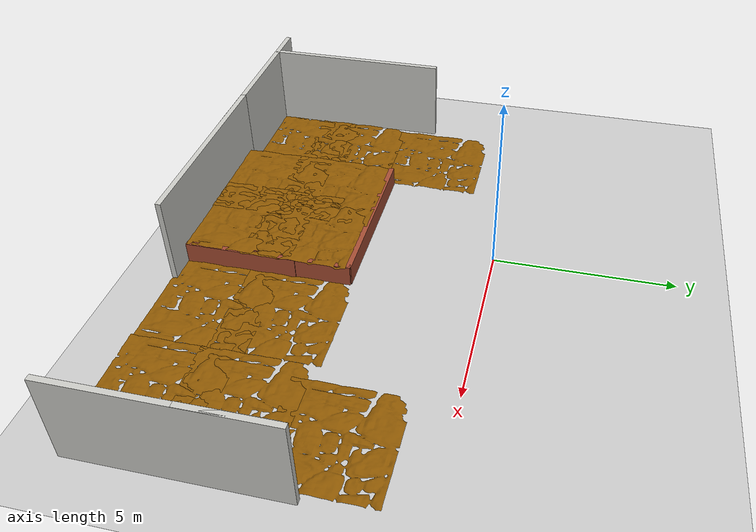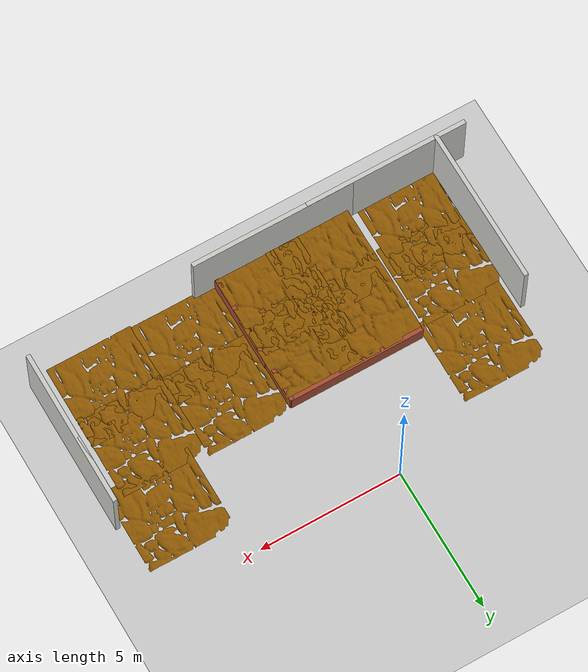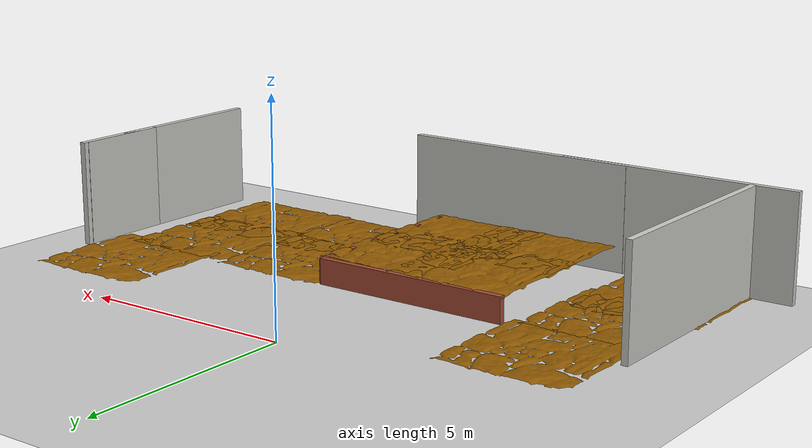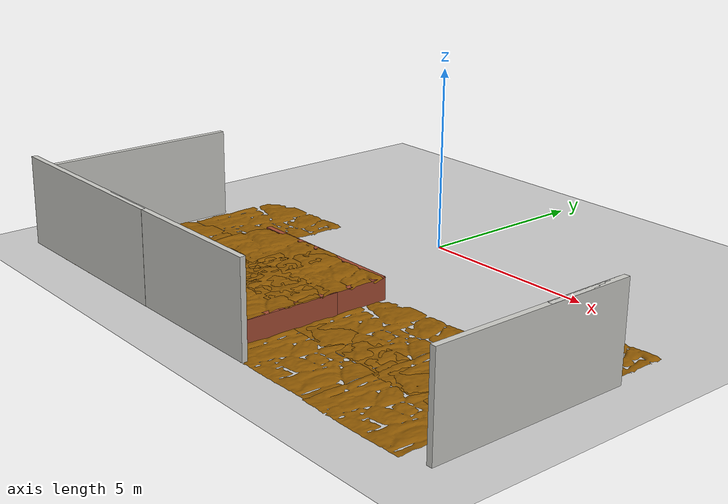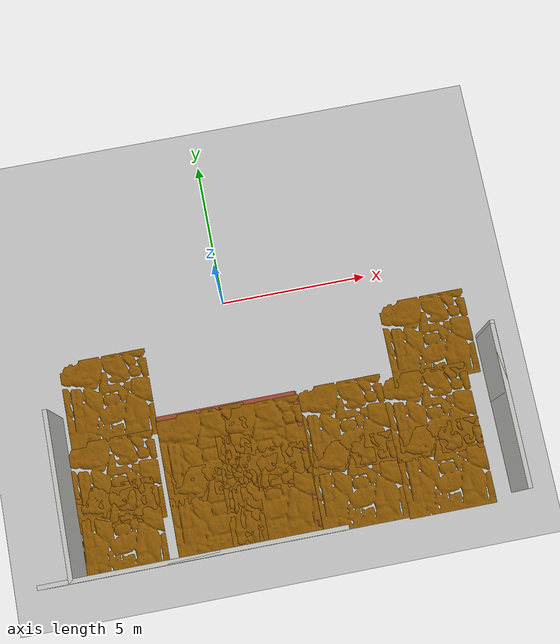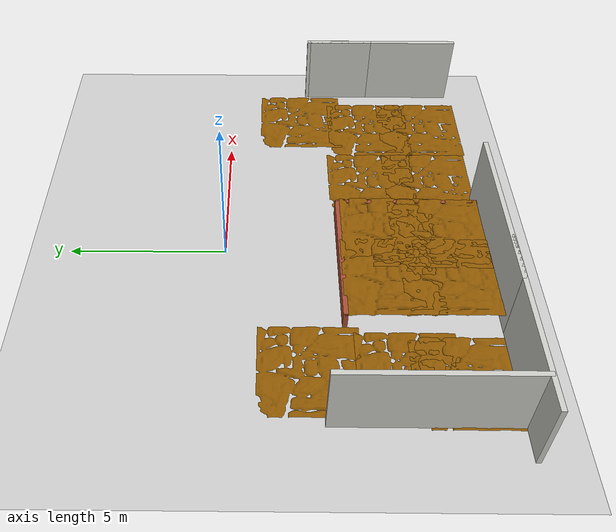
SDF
<sdf version="1.6">
 <world name="default">
  <model name="ground_plane">
   <static>1</static>
   <link name="link">
    <collision name="collision">
     <geometry><plane><normal>0 0 1</normal><size>100 100</size></plane></geometry>
     <surface>
      <contact><collide_bitmask>65535</collide_bitmask></contact>
      <friction><ode><mu>100</mu><mu2>50</mu2></ode></friction>
     </surface>
    </collision>
    <visual name="visual">
     <cast_shadows>0</cast_shadows>
     <geometry><plane><normal>0 0 1</normal><size>100 100</size></plane></geometry>
     <material>
      <script><uri>file://media/materials/scripts/gazebo.material</uri><name>Gazebo/Grey</name></script>
     </material>
    </visual>
   </link>
  </model>
  <model name="pared_1_1">
   <pose>-6.17787 -5.68421 0 0 -0 0</pose>
   <link name="Wall_21">
    <collision name="Wall_21_Collision">
     <geometry><box><size>5.5 0.15 2.5</size></box></geometry>
     <pose>0 0 1.25 0 -0 0</pose>
    </collision>
    <visual name="Wall_21_Visual">
     <pose>0 0 1.25 0 -0 0</pose>
     <geometry><box><size>5.5 0.15 2.5</size></box></geometry>
     <material>
      <script><uri>file://media/materials/scripts/gazebo.material</uri><name>Gazebo/CeilingTiled</name></script>
      <ambient>1 1 1 1</ambient>
     </material>
     <meta><layer>0</layer></meta>
    </visual>
    <pose>0 0 0 0 -0 -1.5708</pose>
   </link>
   <static>1</static>
  </model>
  <model name="pared4">
   <pose>8.44328 -4.0336 0 0 -0 0</pose>
   <link name="Wall_28">
    <collision name="Wall_28_Collision">
     <geometry><box><size>2.25 0.15 2.5</size></box></geometry>
     <pose>0 0 1.25 0 -0 0</pose>
    </collision>
    <visual name="Wall_28_Visual">
     <pose>0 0 1.25 0 -0 0</pose>
     <geometry><box><size>2.25 0.15 2.5</size></box></geometry>
     <material>
      <script><uri>file://media/materials/scripts/gazebo.material</uri><name>Gazebo/CeilingTiled</name></script>
      <ambient>1 1 1 1</ambient>
     </material>
     <meta><layer>0</layer></meta>
    </visual>
    <pose>-0 0 0 0 -0 -1.5708</pose>
   </link>
   <static>1</static>
  </model>
  <model name="pared_2_2">
   <pose>-0.261836 -8.38493 0 0 -0 0</pose>
   <link name="Wall_24">
    <collision name="Wall_24_Collision">
     <geometry><box><size>5.75 0.15 2.5</size></box></geometry>
     <pose>0 0 1.25 0 -0 0</pose>
    </collision>
    <visual name="Wall_24_Visual">
     <pose>0 0 1.25 0 -0 0</pose>
     <geometry><box><size>5.75 0.15 2.5</size></box></geometry>
     <material>
      <script><uri>file://media/materials/scripts/gazebo.material</uri><name>Gazebo/CeilingTiled</name></script>
      <ambient>1 1 1 1</ambient>
     </material>
     <meta><layer>0</layer></meta>
    </visual>
   </link>
   <static>1</static>
  </model>
  <model name="pared_1_4">
   <pose>8.44952 -5.53816 0 0 -0 0</pose>
   <link name="Wall_21">
    <collision name="Wall_21_Collision">
     <geometry><box><size>5.5 0.15 2.5</size></box></geometry>
     <pose>0 0 1.25 0 -0 0</pose>
    </collision>
    <visual name="Wall_21_Visual">
     <pose>0 0 1.25 0 -0 0</pose>
     <geometry><box><size>5.5 0.15 2.5</size></box></geometry>
     <material>
      <script><uri>file://media/materials/scripts/gazebo.material</uri><name>Gazebo/CeilingTiled</name></script>
      <ambient>1 1 1 1</ambient>
     </material>
     <meta><layer>0</layer></meta>
    </visual>
    <pose>0 0 0 0 -0 -1.5708</pose>
   </link>
   <static>1</static>
  </model>
  <model name="suelo_1_12">
   <link name="link_0">
    <inertial>
     <mass>1</mass>
     <inertia>
      <ixx>0.166667</ixx>
      <ixy>0</ixy>
      <ixz>0</ixz>
      <iyy>0.166667</iyy>
      <iyz>0</iyz>
      <izz>0.166667</izz>
     </inertia>
    </inertial>
    <pose>-2e-06 0 0 0 -0 0</pose>
    <gravity>0</gravity>
    <visual name="visual">
     <pose>0 0 0 1.57 -0 0</pose>
     <geometry>
      <mesh>
       <uri>/home/christyan/catkin_sureveg/src/explorador_2/worlds/Plantas/roca2.stl</uri>
       <scale>0.005 0.003 0.005</scale>
      </mesh>
     </geometry>
     <material>
      <lighting>1</lighting>
      <script><uri>file://media/materials/scripts/gazebo.material</uri><name>Gazebo/Grey</name></script>
      <shader type="vertex"><normal_map>__default__</normal_map></shader>
      <ambient>0.561 0.349 0.008 1</ambient>
      <diffuse>0.333 0.341 0.325 1</diffuse>
      <specular>0.561 0.349 0.008 1</specular>
      <emissive>0 0 0 1</emissive>
     </material>
    </visual>
    <collision name="collision">
     <pose>0 0 0 1.57 -0 0</pose>
     <geometry>
      <mesh>
       <uri>/home/christyan/catkin_sureveg/src/explorador_2/worlds/Plantas/roca2.stl</uri>
       <scale>0.005 0.003 0.005</scale>
      </mesh>
     </geometry>
     <surface>
      <friction>
       <ode><mu>1</mu><mu2>1</mu2><fdir1>0 0 0</fdir1><slip1>0</slip1><slip2>0</slip2></ode>
       <torsional>
        <coefficient>1</coefficient>
        <patch_radius>0</patch_radius>
        <surface_radius>0</surface_radius>
        <use_patch_radius>1</use_patch_radius>
        <ode><slip>0</slip></ode>
       </torsional>
      </friction>
      <bounce><restitution_coefficient>0</restitution_coefficient><threshold>1e+06</threshold></bounce>
      <contact>
       <collide_without_contact>1</collide_without_contact>
       <collide_without_contact_bitmask>1</collide_without_contact_bitmask>
       <collide_bitmask>1</collide_bitmask>
       <ode>
        <soft_cfm>0</soft_cfm>
        <soft_erp>0.2</soft_erp>
        <kp>1e+13</kp>
        <kd>1</kd>
        <max_vel>0.01</max_vel>
        <min_depth>0</min_depth>
       </ode>
       <bullet>
        <split_impulse>1</split_impulse>
        <split_impulse_penetration_threshold>-0.01</split_impulse_penetration_threshold>
        <soft_cfm>0</soft_cfm>
        <soft_erp>0.2</soft_erp>
        <kp>1e+13</kp>
        <kd>1</kd>
       </bullet>
      </contact>
     </surface>
    </collision>
   </link>
   <static>0</static>
   <pose>6.77236 -2.56519 0 0 -0 0</pose>
  </model>
  <model name="suelo_alto_3">
   <link name="link_0">
    <inertial>
     <mass>1</mass>
     <inertia>
      <ixx>0.166667</ixx>
      <ixy>0</ixy>
      <ixz>0</ixz>
      <iyy>0.166667</iyy>
      <iyz>0</iyz>
      <izz>0.166667</izz>
     </inertia>
    </inertial>
    <pose>-2e-06 0 0 0 -0 0</pose>
    <gravity>0</gravity>
    <visual name="visual">
     <pose>0 0 0.6 1.57 -0 0</pose>
     <geometry>
      <mesh>
       <uri>/home/christyan/catkin_sureveg/src/explorador_2/worlds/Plantas/roca2.stl</uri>
       <scale>0.005 0.003 0.005</scale>
      </mesh>
     </geometry>
     <material>
      <lighting>1</lighting>
      <script><uri>file://media/materials/scripts/gazebo.material</uri><name>Gazebo/Grey</name></script>
      <shader type="vertex"><normal_map>__default__</normal_map></shader>
      <ambient>0.561 0.349 0.008 1</ambient>
      <diffuse>0.333 0.341 0.325 1</diffuse>
      <specular>0.561 0.349 0.008 1</specular>
      <emissive>0 0 0 1</emissive>
     </material>
    </visual>
    <collision name="collision">
     <pose>0 0 0.6 1.57 -0 0</pose>
     <geometry>
      <mesh>
       <uri>/home/christyan/catkin_sureveg/src/explorador_2/worlds/Plantas/roca2.stl</uri>
       <scale>0.005 0.003 0.005</scale>
      </mesh>
     </geometry>
     <surface>
      <friction>
       <ode><mu>1</mu><mu2>1</mu2><fdir1>0 0 0</fdir1><slip1>0</slip1><slip2>0</slip2></ode>
       <torsional>
        <coefficient>1</coefficient>
        <patch_radius>0</patch_radius>
        <surface_radius>0</surface_radius>
        <use_patch_radius>1</use_patch_radius>
        <ode><slip>0</slip></ode>
       </torsional>
      </friction>
      <bounce><restitution_coefficient>0</restitution_coefficient><threshold>1e+06</threshold></bounce>
      <contact>
       <collide_without_contact>1</collide_without_contact>
       <collide_without_contact_bitmask>1</collide_without_contact_bitmask>
       <collide_bitmask>1</collide_bitmask>
       <ode>
        <soft_cfm>0</soft_cfm>
        <soft_erp>0.2</soft_erp>
        <kp>1e+13</kp>
        <kd>1</kd>
        <max_vel>0.01</max_vel>
        <min_depth>0</min_depth>
       </ode>
       <bullet>
        <split_impulse>1</split_impulse>
        <split_impulse_penetration_threshold>-0.01</split_impulse_penetration_threshold>
        <soft_cfm>0</soft_cfm>
        <soft_erp>0.2</soft_erp>
        <kp>1e+13</kp>
        <kd>1</kd>
       </bullet>
      </contact>
     </surface>
    </collision>
   </link>
   <static>0</static>
   <pose>-1.44918 -5.13652 0 0 -0 0</pose>
  </model>
  <model name="suelo_alto_4">
   <link name="link_0">
    <inertial>
     <mass>1</mass>
     <inertia>
      <ixx>0.166667</ixx>
      <ixy>0</ixy>
      <ixz>0</ixz>
      <iyy>0.166667</iyy>
      <iyz>0</iyz>
      <izz>0.166667</izz>
     </inertia>
    </inertial>
    <pose>-2e-06 0 0 0 -0 0</pose>
    <gravity>0</gravity>
    <visual name="visual">
     <pose>0 0 0.6 1.57 -0 0</pose>
     <geometry>
      <mesh>
       <uri>/home/christyan/catkin_sureveg/src/explorador_2/worlds/Plantas/roca2.stl</uri>
       <scale>0.005 0.003 0.005</scale>
      </mesh>
     </geometry>
     <material>
      <lighting>1</lighting>
      <script><uri>file://media/materials/scripts/gazebo.material</uri><name>Gazebo/Grey</name></script>
      <shader type="vertex"><normal_map>__default__</normal_map></shader>
      <ambient>0.561 0.349 0.008 1</ambient>
      <diffuse>0.333 0.341 0.325 1</diffuse>
      <specular>0.561 0.349 0.008 1</specular>
      <emissive>0 0 0 1</emissive>
     </material>
    </visual>
    <collision name="collision">
     <pose>0 0 0.6 1.57 -0 0</pose>
     <geometry>
      <mesh>
       <uri>/home/christyan/catkin_sureveg/src/explorador_2/worlds/Plantas/roca2.stl</uri>
       <scale>0.005 0.003 0.005</scale>
      </mesh>
     </geometry>
     <surface>
      <friction>
       <ode><mu>1</mu><mu2>1</mu2><fdir1>0 0 0</fdir1><slip1>0</slip1><slip2>0</slip2></ode>
       <torsional>
        <coefficient>1</coefficient>
        <patch_radius>0</patch_radius>
        <surface_radius>0</surface_radius>
        <use_patch_radius>1</use_patch_radius>
        <ode><slip>0</slip></ode>
       </torsional>
      </friction>
      <bounce><restitution_coefficient>0</restitution_coefficient><threshold>1e+06</threshold></bounce>
      <contact>
       <collide_without_contact>1</collide_without_contact>
       <collide_without_contact_bitmask>1</collide_without_contact_bitmask>
       <collide_bitmask>1</collide_bitmask>
       <ode>
        <soft_cfm>0</soft_cfm>
        <soft_erp>0.2</soft_erp>
        <kp>1e+13</kp>
        <kd>1</kd>
        <max_vel>0.01</max_vel>
        <min_depth>0</min_depth>
       </ode>
       <bullet>
        <split_impulse>1</split_impulse>
        <split_impulse_penetration_threshold>-0.01</split_impulse_penetration_threshold>
        <soft_cfm>0</soft_cfm>
        <soft_erp>0.2</soft_erp>
        <kp>1e+13</kp>
        <kd>1</kd>
       </bullet>
      </contact>
     </surface>
    </collision>
   </link>
   <static>0</static>
   <pose>-1.44381 -6.94746 0 0 -0 0</pose>
  </model>
  <model name="pared_corta_lad_2_1">
   <pose>-0.555089 -3.65728 0 0 -0 0</pose>
   <link name="Wall_19">
    <collision name="Wall_19_Collision">
     <geometry><box><size>4.75 0.15 0.6</size></box></geometry>
     <pose>0 0 0.3 0 -0 0</pose>
    </collision>
    <visual name="Wall_19_Visual">
     <pose>0 0 0.3 0 -0 0</pose>
     <geometry><box><size>4.75 0.15 0.6</size></box></geometry>
     <material>
      <script><uri>file://media/materials/scripts/gazebo.material</uri><name>Gazebo/Bricks</name></script>
      <ambient>1 1 1 1</ambient>
     </material>
     <meta><layer>0</layer></meta>
    </visual>
   </link>
   <static>1</static>
  </model>
  <model name="pared_corta_ladrillo_3">
   <pose>1.78731 -5.23372 0 0 -0 0</pose>
   <link name="Wall_13">
    <collision name="Wall_13_Collision">
     <geometry><box><size>3.25 0.15 0.6</size></box></geometry>
     <pose>0 0 0.3 0 -0 0</pose>
    </collision>
    <visual name="Wall_13_Visual">
     <pose>0 0 0.3 0 -0 0</pose>
     <geometry><box><size>3.25 0.15 0.6</size></box></geometry>
     <material>
      <script><uri>file://media/materials/scripts/gazebo.material</uri><name>Gazebo/Bricks</name></script>
      <ambient>0.996078 0.47451 0.0196078 1</ambient>
     </material>
     <meta><layer>0</layer></meta>
    </visual>
    <pose>0 -0 0 0 -0 1.5708</pose>
   </link>
   <static>1</static>
  </model>
  <model name="pared_corta_ladrillo_4">
   <pose>1.80713 -6.7816 0 0 -0 0</pose>
   <link name="Wall_13">
    <collision name="Wall_13_Collision">
     <geometry><box><size>3.25 0.15 0.6</size></box></geometry>
     <pose>0 0 0.3 0 -0 0</pose>
    </collision>
    <visual name="Wall_13_Visual">
     <pose>0 0 0.3 0 -0 0</pose>
     <geometry><box><size>3.25 0.15 0.6</size></box></geometry>
     <material>
      <script><uri>file://media/materials/scripts/gazebo.material</uri><name>Gazebo/Bricks</name></script>
      <ambient>0.996078 0.47451 0.0196078 1</ambient>
     </material>
     <meta><layer>0</layer></meta>
    </visual>
    <pose>0 -0 0 0 -0 1.5708</pose>
   </link>
   <static>1</static>
  </model>
  <model name="suelo_alto_5">
   <link name="link_0">
    <inertial>
     <mass>1</mass>
     <inertia>
      <ixx>0.166667</ixx>
      <ixy>0</ixy>
      <ixz>0</ixz>
      <iyy>0.166667</iyy>
      <iyz>0</iyz>
      <izz>0.166667</izz>
     </inertia>
    </inertial>
    <pose>-2e-06 0 0 0 -0 0</pose>
    <gravity>0</gravity>
    <visual name="visual">
     <pose>0 0 0.6 1.57 -0 0</pose>
     <geometry>
      <mesh>
       <uri>/home/christyan/catkin_sureveg/src/explorador_2/worlds/Plantas/roca2.stl</uri>
       <scale>0.005 0.003 0.005</scale>
      </mesh>
     </geometry>
     <material>
      <lighting>1</lighting>
      <script><uri>file://media/materials/scripts/gazebo.material</uri><name>Gazebo/Grey</name></script>
      <shader type="vertex"><normal_map>__default__</normal_map></shader>
      <ambient>0.561 0.349 0.008 1</ambient>
      <diffuse>0.333 0.341 0.325 1</diffuse>
      <specular>0.561 0.349 0.008 1</specular>
      <emissive>0 0 0 1</emissive>
     </material>
    </visual>
    <collision name="collision">
     <pose>0 0 0.6 1.57 -0 0</pose>
     <geometry>
      <mesh>
       <uri>/home/christyan/catkin_sureveg/src/explorador_2/worlds/Plantas/roca2.stl</uri>
       <scale>0.005 0.003 0.005</scale>
      </mesh>
     </geometry>
     <surface>
      <friction>
       <ode><mu>1</mu><mu2>1</mu2><fdir1>0 0 0</fdir1><slip1>0</slip1><slip2>0</slip2></ode>
       <torsional>
        <coefficient>1</coefficient>
        <patch_radius>0</patch_radius>
        <surface_radius>0</surface_radius>
        <use_patch_radius>1</use_patch_radius>
        <ode><slip>0</slip></ode>
       </torsional>
      </friction>
      <bounce><restitution_coefficient>0</restitution_coefficient><threshold>1e+06</threshold></bounce>
      <contact>
       <collide_without_contact>1</collide_without_contact>
       <collide_without_contact_bitmask>1</collide_without_contact_bitmask>
       <collide_bitmask>1</collide_bitmask>
       <ode>
        <soft_cfm>0</soft_cfm>
        <soft_erp>0.2</soft_erp>
        <kp>1e+13</kp>
        <kd>1</kd>
        <max_vel>0.01</max_vel>
        <min_depth>0</min_depth>
       </ode>
       <bullet>
        <split_impulse>1</split_impulse>
        <split_impulse_penetration_threshold>-0.01</split_impulse_penetration_threshold>
        <soft_cfm>0</soft_cfm>
        <soft_erp>0.2</soft_erp>
        <kp>1e+13</kp>
        <kd>1</kd>
       </bullet>
      </contact>
     </surface>
    </collision>
   </link>
   <static>0</static>
   <pose>0.415874 -5.21643 0 0 -0 0</pose>
  </model>
  <model name="suelo_alto_6">
   <link name="link_0">
    <inertial>
     <mass>1</mass>
     <inertia>
      <ixx>0.166667</ixx>
      <ixy>0</ixy>
      <ixz>0</ixz>
      <iyy>0.166667</iyy>
      <iyz>0</iyz>
      <izz>0.166667</izz>
     </inertia>
    </inertial>
    <pose>-2e-06 0 0 0 -0 0</pose>
    <gravity>0</gravity>
    <visual name="visual">
     <pose>0 0 0.6 1.57 -0 0</pose>
     <geometry>
      <mesh>
       <uri>/home/christyan/catkin_sureveg/src/explorador_2/worlds/Plantas/roca2.stl</uri>
       <scale>0.005 0.003 0.005</scale>
      </mesh>
     </geometry>
     <material>
      <lighting>1</lighting>
      <script><uri>file://media/materials/scripts/gazebo.material</uri><name>Gazebo/Grey</name></script>
      <shader type="vertex"><normal_map>__default__</normal_map></shader>
      <ambient>0.561 0.349 0.008 1</ambient>
      <diffuse>0.333 0.341 0.325 1</diffuse>
      <specular>0.561 0.349 0.008 1</specular>
      <emissive>0 0 0 1</emissive>
     </material>
    </visual>
    <collision name="collision">
     <pose>0 0 0.6 1.57 -0 0</pose>
     <geometry>
      <mesh>
       <uri>/home/christyan/catkin_sureveg/src/explorador_2/worlds/Plantas/roca2.stl</uri>
       <scale>0.005 0.003 0.005</scale>
      </mesh>
     </geometry>
     <surface>
      <friction>
       <ode><mu>1</mu><mu2>1</mu2><fdir1>0 0 0</fdir1><slip1>0</slip1><slip2>0</slip2></ode>
       <torsional>
        <coefficient>1</coefficient>
        <patch_radius>0</patch_radius>
        <surface_radius>0</surface_radius>
        <use_patch_radius>1</use_patch_radius>
        <ode><slip>0</slip></ode>
       </torsional>
      </friction>
      <bounce><restitution_coefficient>0</restitution_coefficient><threshold>1e+06</threshold></bounce>
      <contact>
       <collide_without_contact>1</collide_without_contact>
       <collide_without_contact_bitmask>1</collide_without_contact_bitmask>
       <collide_bitmask>1</collide_bitmask>
       <ode>
        <soft_cfm>0</soft_cfm>
        <soft_erp>0.2</soft_erp>
        <kp>1e+13</kp>
        <kd>1</kd>
        <max_vel>0.01</max_vel>
        <min_depth>0</min_depth>
       </ode>
       <bullet>
        <split_impulse>1</split_impulse>
        <split_impulse_penetration_threshold>-0.01</split_impulse_penetration_threshold>
        <soft_cfm>0</soft_cfm>
        <soft_erp>0.2</soft_erp>
        <kp>1e+13</kp>
        <kd>1</kd>
       </bullet>
      </contact>
     </surface>
    </collision>
   </link>
   <static>0</static>
   <pose>0.373886 -6.79201 0 0 -0 0</pose>
  </model>
  <model name="suelo_1_13">
   <link name="link_0">
    <inertial>
     <mass>1</mass>
     <inertia>
      <ixx>0.166667</ixx>
      <ixy>0</ixy>
      <ixz>0</ixz>
      <iyy>0.166667</iyy>
      <iyz>0</iyz>
      <izz>0.166667</izz>
     </inertia>
    </inertial>
    <pose>-2e-06 0 0 0 -0 0</pose>
    <gravity>0</gravity>
    <visual name="visual">
     <pose>0 0 0 1.57 -0 0</pose>
     <geometry>
      <mesh>
       <uri>/home/christyan/catkin_sureveg/src/explorador_2/worlds/Plantas/roca2.stl</uri>
       <scale>0.005 0.003 0.005</scale>
      </mesh>
     </geometry>
     <material>
      <lighting>1</lighting>
      <script><uri>file://media/materials/scripts/gazebo.material</uri><name>Gazebo/Grey</name></script>
      <shader type="vertex"><normal_map>__default__</normal_map></shader>
      <ambient>0.561 0.349 0.008 1</ambient>
      <diffuse>0.333 0.341 0.325 1</diffuse>
      <specular>0.561 0.349 0.008 1</specular>
      <emissive>0 0 0 1</emissive>
     </material>
    </visual>
    <collision name="collision">
     <pose>0 0 0 1.57 -0 0</pose>
     <geometry>
      <mesh>
       <uri>/home/christyan/catkin_sureveg/src/explorador_2/worlds/Plantas/roca2.stl</uri>
       <scale>0.005 0.003 0.005</scale>
      </mesh>
     </geometry>
     <surface>
      <friction>
       <ode><mu>1</mu><mu2>1</mu2><fdir1>0 0 0</fdir1><slip1>0</slip1><slip2>0</slip2></ode>
       <torsional>
        <coefficient>1</coefficient>
        <patch_radius>0</patch_radius>
        <surface_radius>0</surface_radius>
        <use_patch_radius>1</use_patch_radius>
        <ode><slip>0</slip></ode>
       </torsional>
      </friction>
      <bounce><restitution_coefficient>0</restitution_coefficient><threshold>1e+06</threshold></bounce>
      <contact>
       <collide_without_contact>1</collide_without_contact>
       <collide_without_contact_bitmask>1</collide_without_contact_bitmask>
       <collide_bitmask>1</collide_bitmask>
       <ode>
        <soft_cfm>0</soft_cfm>
        <soft_erp>0.2</soft_erp>
        <kp>1e+13</kp>
        <kd>1</kd>
        <max_vel>0.01</max_vel>
        <min_depth>0</min_depth>
       </ode>
       <bullet>
        <split_impulse>1</split_impulse>
        <split_impulse_penetration_threshold>-0.01</split_impulse_penetration_threshold>
        <soft_cfm>0</soft_cfm>
        <soft_erp>0.2</soft_erp>
        <kp>1e+13</kp>
        <kd>1</kd>
       </bullet>
      </contact>
     </surface>
    </collision>
   </link>
   <static>0</static>
   <pose>3.3266 -4.97513 0 0 -0 0</pose>
  </model>
  <model name="suelo_1_14">
   <link name="link_0">
    <inertial>
     <mass>1</mass>
     <inertia>
      <ixx>0.166667</ixx>
      <ixy>0</ixy>
      <ixz>0</ixz>
      <iyy>0.166667</iyy>
      <iyz>0</iyz>
      <izz>0.166667</izz>
     </inertia>
    </inertial>
    <pose>-2e-06 0 0 0 -0 0</pose>
    <gravity>0</gravity>
    <visual name="visual">
     <pose>0 0 0 1.57 -0 0</pose>
     <geometry>
      <mesh>
       <uri>/home/christyan/catkin_sureveg/src/explorador_2/worlds/Plantas/roca2.stl</uri>
       <scale>0.005 0.003 0.005</scale>
      </mesh>
     </geometry>
     <material>
      <lighting>1</lighting>
      <script><uri>file://media/materials/scripts/gazebo.material</uri><name>Gazebo/Grey</name></script>
      <shader type="vertex"><normal_map>__default__</normal_map></shader>
      <ambient>0.561 0.349 0.008 1</ambient>
      <diffuse>0.333 0.341 0.325 1</diffuse>
      <specular>0.561 0.349 0.008 1</specular>
      <emissive>0 0 0 1</emissive>
     </material>
    </visual>
    <collision name="collision">
     <pose>0 0 0 1.57 -0 0</pose>
     <geometry>
      <mesh>
       <uri>/home/christyan/catkin_sureveg/src/explorador_2/worlds/Plantas/roca2.stl</uri>
       <scale>0.005 0.003 0.005</scale>
      </mesh>
     </geometry>
     <surface>
      <friction>
       <ode><mu>1</mu><mu2>1</mu2><fdir1>0 0 0</fdir1><slip1>0</slip1><slip2>0</slip2></ode>
       <torsional>
        <coefficient>1</coefficient>
        <patch_radius>0</patch_radius>
        <surface_radius>0</surface_radius>
        <use_patch_radius>1</use_patch_radius>
        <ode><slip>0</slip></ode>
       </torsional>
      </friction>
      <bounce><restitution_coefficient>0</restitution_coefficient><threshold>1e+06</threshold></bounce>
      <contact>
       <collide_without_contact>1</collide_without_contact>
       <collide_without_contact_bitmask>1</collide_without_contact_bitmask>
       <collide_bitmask>1</collide_bitmask>
       <ode>
        <soft_cfm>0</soft_cfm>
        <soft_erp>0.2</soft_erp>
        <kp>1e+13</kp>
        <kd>1</kd>
        <max_vel>0.01</max_vel>
        <min_depth>0</min_depth>
       </ode>
       <bullet>
        <split_impulse>1</split_impulse>
        <split_impulse_penetration_threshold>-0.01</split_impulse_penetration_threshold>
        <soft_cfm>0</soft_cfm>
        <soft_erp>0.2</soft_erp>
        <kp>1e+13</kp>
        <kd>1</kd>
       </bullet>
      </contact>
     </surface>
    </collision>
   </link>
   <static>0</static>
   <pose>6.31309 -5.10409 0 0 -0 0</pose>
  </model>
  <model name="suelo_1_15">
   <link name="link_0">
    <inertial>
     <mass>1</mass>
     <inertia>
      <ixx>0.166667</ixx>
      <ixy>0</ixy>
      <ixz>0</ixz>
      <iyy>0.166667</iyy>
      <iyz>0</iyz>
      <izz>0.166667</izz>
     </inertia>
    </inertial>
    <pose>-2e-06 0 0 0 -0 0</pose>
    <gravity>0</gravity>
    <visual name="visual">
     <pose>0 0 0 1.57 -0 0</pose>
     <geometry>
      <mesh>
       <uri>/home/christyan/catkin_sureveg/src/explorador_2/worlds/Plantas/roca2.stl</uri>
       <scale>0.005 0.003 0.005</scale>
      </mesh>
     </geometry>
     <material>
      <lighting>1</lighting>
      <script><uri>file://media/materials/scripts/gazebo.material</uri><name>Gazebo/Grey</name></script>
      <shader type="vertex"><normal_map>__default__</normal_map></shader>
      <ambient>0.561 0.349 0.008 1</ambient>
      <diffuse>0.333 0.341 0.325 1</diffuse>
      <specular>0.561 0.349 0.008 1</specular>
      <emissive>0 0 0 1</emissive>
     </material>
    </visual>
    <collision name="collision">
     <pose>0 0 0 1.57 -0 0</pose>
     <geometry>
      <mesh>
       <uri>/home/christyan/catkin_sureveg/src/explorador_2/worlds/Plantas/roca2.stl</uri>
       <scale>0.005 0.003 0.005</scale>
      </mesh>
     </geometry>
     <surface>
      <friction>
       <ode><mu>1</mu><mu2>1</mu2><fdir1>0 0 0</fdir1><slip1>0</slip1><slip2>0</slip2></ode>
       <torsional>
        <coefficient>1</coefficient>
        <patch_radius>0</patch_radius>
        <surface_radius>0</surface_radius>
        <use_patch_radius>1</use_patch_radius>
        <ode><slip>0</slip></ode>
       </torsional>
      </friction>
      <bounce><restitution_coefficient>0</restitution_coefficient><threshold>1e+06</threshold></bounce>
      <contact>
       <collide_without_contact>1</collide_without_contact>
       <collide_without_contact_bitmask>1</collide_without_contact_bitmask>
       <collide_bitmask>1</collide_bitmask>
       <ode>
        <soft_cfm>0</soft_cfm>
        <soft_erp>0.2</soft_erp>
        <kp>1e+13</kp>
        <kd>1</kd>
        <max_vel>0.01</max_vel>
        <min_depth>0</min_depth>
       </ode>
       <bullet>
        <split_impulse>1</split_impulse>
        <split_impulse_penetration_threshold>-0.01</split_impulse_penetration_threshold>
        <soft_cfm>0</soft_cfm>
        <soft_erp>0.2</soft_erp>
        <kp>1e+13</kp>
        <kd>1</kd>
       </bullet>
      </contact>
     </surface>
    </collision>
   </link>
   <static>0</static>
   <pose>3.34539 -6.95171 0 0 -0 0</pose>
  </model>
  <model name="suelo_1_16">
   <link name="link_0">
    <inertial>
     <mass>1</mass>
     <inertia>
      <ixx>0.166667</ixx>
      <ixy>0</ixy>
      <ixz>0</ixz>
      <iyy>0.166667</iyy>
      <iyz>0</iyz>
      <izz>0.166667</izz>
     </inertia>
    </inertial>
    <pose>-2e-06 0 0 0 -0 0</pose>
    <gravity>0</gravity>
    <visual name="visual">
     <pose>0 0 0 1.57 -0 0</pose>
     <geometry>
      <mesh>
       <uri>/home/christyan/catkin_sureveg/src/explorador_2/worlds/Plantas/roca2.stl</uri>
       <scale>0.005 0.003 0.005</scale>
      </mesh>
     </geometry>
     <material>
      <lighting>1</lighting>
      <script><uri>file://media/materials/scripts/gazebo.material</uri><name>Gazebo/Grey</name></script>
      <shader type="vertex"><normal_map>__default__</normal_map></shader>
      <ambient>0.561 0.349 0.008 1</ambient>
      <diffuse>0.333 0.341 0.325 1</diffuse>
      <specular>0.561 0.349 0.008 1</specular>
      <emissive>0 0 0 1</emissive>
     </material>
    </visual>
    <collision name="collision">
     <pose>0 0 0 1.57 -0 0</pose>
     <geometry>
      <mesh>
       <uri>/home/christyan/catkin_sureveg/src/explorador_2/worlds/Plantas/roca2.stl</uri>
       <scale>0.005 0.003 0.005</scale>
      </mesh>
     </geometry>
     <surface>
      <friction>
       <ode><mu>1</mu><mu2>1</mu2><fdir1>0 0 0</fdir1><slip1>0</slip1><slip2>0</slip2></ode>
       <torsional>
        <coefficient>1</coefficient>
        <patch_radius>0</patch_radius>
        <surface_radius>0</surface_radius>
        <use_patch_radius>1</use_patch_radius>
        <ode><slip>0</slip></ode>
       </torsional>
      </friction>
      <bounce><restitution_coefficient>0</restitution_coefficient><threshold>1e+06</threshold></bounce>
      <contact>
       <collide_without_contact>1</collide_without_contact>
       <collide_without_contact_bitmask>1</collide_without_contact_bitmask>
       <collide_bitmask>1</collide_bitmask>
       <ode>
        <soft_cfm>0</soft_cfm>
        <soft_erp>0.2</soft_erp>
        <kp>1e+13</kp>
        <kd>1</kd>
        <max_vel>0.01</max_vel>
        <min_depth>0</min_depth>
       </ode>
       <bullet>
        <split_impulse>1</split_impulse>
        <split_impulse_penetration_threshold>-0.01</split_impulse_penetration_threshold>
        <soft_cfm>0</soft_cfm>
        <soft_erp>0.2</soft_erp>
        <kp>1e+13</kp>
        <kd>1</kd>
       </bullet>
      </contact>
     </surface>
    </collision>
   </link>
   <static>0</static>
   <pose>6.3308 -7.01281 0 0 -0 0</pose>
  </model>
  <model name="pared_2_1">
   <pose>-4.35366 -8.38906 0 0 -0 0</pose>
   <link name="Wall_24">
    <collision name="Wall_24_Collision">
     <geometry><box><size>5.75 0.15 2.5</size></box></geometry>
     <pose>0 0 1.25 0 -0 0</pose>
    </collision>
    <visual name="Wall_24_Visual">
     <pose>0 0 1.25 0 -0 0</pose>
     <geometry><box><size>5.75 0.15 2.5</size></box></geometry>
     <material>
      <script><uri>file://media/materials/scripts/gazebo.material</uri><name>Gazebo/CeilingTiled</name></script>
      <ambient>1 1 1 1</ambient>
     </material>
     <meta><layer>0</layer></meta>
    </visual>
   </link>
   <static>1</static>
  </model>
  <model name="suelo_1_20">
   <link name="link_0">
    <inertial>
     <mass>1</mass>
     <inertia>
      <ixx>0.166667</ixx>
      <ixy>0</ixy>
      <ixz>0</ixz>
      <iyy>0.166667</iyy>
      <iyz>0</iyz>
      <izz>0.166667</izz>
     </inertia>
    </inertial>
    <pose>-2e-06 0 0 0 -0 0</pose>
    <gravity>0</gravity>
    <visual name="visual">
     <pose>0 0 0 1.57 -0 0</pose>
     <geometry>
      <mesh>
       <uri>/home/christyan/catkin_sureveg/src/explorador_2/worlds/Plantas/roca2.stl</uri>
       <scale>0.005 0.003 0.005</scale>
      </mesh>
     </geometry>
     <material>
      <lighting>1</lighting>
      <script><uri>file://media/materials/scripts/gazebo.material</uri><name>Gazebo/Grey</name></script>
      <shader type="vertex"><normal_map>__default__</normal_map></shader>
      <ambient>0.561 0.349 0.008 1</ambient>
      <diffuse>0.333 0.341 0.325 1</diffuse>
      <specular>0.561 0.349 0.008 1</specular>
      <emissive>0 0 0 1</emissive>
     </material>
    </visual>
    <collision name="collision">
     <pose>0 0 0 1.57 -0 0</pose>
     <geometry>
      <mesh>
       <uri>/home/christyan/catkin_sureveg/src/explorador_2/worlds/Plantas/roca2.stl</uri>
       <scale>0.005 0.003 0.005</scale>
      </mesh>
     </geometry>
     <surface>
      <friction>
       <ode><mu>1</mu><mu2>1</mu2><fdir1>0 0 0</fdir1><slip1>0</slip1><slip2>0</slip2></ode>
       <torsional>
        <coefficient>1</coefficient>
        <patch_radius>0</patch_radius>
        <surface_radius>0</surface_radius>
        <use_patch_radius>1</use_patch_radius>
        <ode><slip>0</slip></ode>
       </torsional>
      </friction>
      <bounce><restitution_coefficient>0</restitution_coefficient><threshold>1e+06</threshold></bounce>
      <contact>
       <collide_without_contact>1</collide_without_contact>
       <collide_without_contact_bitmask>1</collide_without_contact_bitmask>
       <collide_bitmask>1</collide_bitmask>
       <ode>
        <soft_cfm>0</soft_cfm>
        <soft_erp>0.2</soft_erp>
        <kp>1e+13</kp>
        <kd>1</kd>
        <max_vel>0.01</max_vel>
        <min_depth>0</min_depth>
       </ode>
       <bullet>
        <split_impulse>1</split_impulse>
        <split_impulse_penetration_threshold>-0.01</split_impulse_penetration_threshold>
        <soft_cfm>0</soft_cfm>
        <soft_erp>0.2</soft_erp>
        <kp>1e+13</kp>
        <kd>1</kd>
       </bullet>
      </contact>
     </surface>
    </collision>
   </link>
   <static>0</static>
   <pose>-4.47286 -2.56006 0 0 -0 0</pose>
  </model>
  <model name="suelo_1_21">
   <link name="link_0">
    <inertial>
     <mass>1</mass>
     <inertia>
      <ixx>0.166667</ixx>
      <ixy>0</ixy>
      <ixz>0</ixz>
      <iyy>0.166667</iyy>
      <iyz>0</iyz>
      <izz>0.166667</izz>
     </inertia>
    </inertial>
    <pose>-2e-06 0 0 0 -0 0</pose>
    <gravity>0</gravity>
    <visual name="visual">
     <pose>0 0 0 1.57 -0 0</pose>
     <geometry>
      <mesh>
       <uri>/home/christyan/catkin_sureveg/src/explorador_2/worlds/Plantas/roca2.stl</uri>
       <scale>0.005 0.003 0.005</scale>
      </mesh>
     </geometry>
     <material>
      <lighting>1</lighting>
      <script><uri>file://media/materials/scripts/gazebo.material</uri><name>Gazebo/Grey</name></script>
      <shader type="vertex"><normal_map>__default__</normal_map></shader>
      <ambient>0.561 0.349 0.008 1</ambient>
      <diffuse>0.333 0.341 0.325 1</diffuse>
      <specular>0.561 0.349 0.008 1</specular>
      <emissive>0 0 0 1</emissive>
     </material>
    </visual>
    <collision name="collision">
     <pose>0 0 0 1.57 -0 0</pose>
     <geometry>
      <mesh>
       <uri>/home/christyan/catkin_sureveg/src/explorador_2/worlds/Plantas/roca2.stl</uri>
       <scale>0.005 0.003 0.005</scale>
      </mesh>
     </geometry>
     <surface>
      <friction>
       <ode><mu>1</mu><mu2>1</mu2><fdir1>0 0 0</fdir1><slip1>0</slip1><slip2>0</slip2></ode>
       <torsional>
        <coefficient>1</coefficient>
        <patch_radius>0</patch_radius>
        <surface_radius>0</surface_radius>
        <use_patch_radius>1</use_patch_radius>
        <ode><slip>0</slip></ode>
       </torsional>
      </friction>
      <bounce><restitution_coefficient>0</restitution_coefficient><threshold>1e+06</threshold></bounce>
      <contact>
       <collide_without_contact>1</collide_without_contact>
       <collide_without_contact_bitmask>1</collide_without_contact_bitmask>
       <collide_bitmask>1</collide_bitmask>
       <ode>
        <soft_cfm>0</soft_cfm>
        <soft_erp>0.2</soft_erp>
        <kp>1e+13</kp>
        <kd>1</kd>
        <max_vel>0.01</max_vel>
        <min_depth>0</min_depth>
       </ode>
       <bullet>
        <split_impulse>1</split_impulse>
        <split_impulse_penetration_threshold>-0.01</split_impulse_penetration_threshold>
        <soft_cfm>0</soft_cfm>
        <soft_erp>0.2</soft_erp>
        <kp>1e+13</kp>
        <kd>1</kd>
       </bullet>
      </contact>
     </surface>
    </collision>
   </link>
   <static>0</static>
   <pose>-4.65972 -5.392 0 0 -0 0</pose>
  </model>
  <model name="suelo_1_22">
   <link name="link_0">
    <inertial>
     <mass>1</mass>
     <inertia>
      <ixx>0.166667</ixx>
      <ixy>0</ixy>
      <ixz>0</ixz>
      <iyy>0.166667</iyy>
      <iyz>0</iyz>
      <izz>0.166667</izz>
     </inertia>
    </inertial>
    <pose>-2e-06 0 0 0 -0 0</pose>
    <gravity>0</gravity>
    <visual name="visual">
     <pose>0 0 0 1.57 -0 0</pose>
     <geometry>
      <mesh>
       <uri>/home/christyan/catkin_sureveg/src/explorador_2/worlds/Plantas/roca2.stl</uri>
       <scale>0.005 0.003 0.005</scale>
      </mesh>
     </geometry>
     <material>
      <lighting>1</lighting>
      <script><uri>file://media/materials/scripts/gazebo.material</uri><name>Gazebo/Grey</name></script>
      <shader type="vertex"><normal_map>__default__</normal_map></shader>
      <ambient>0.561 0.349 0.008 1</ambient>
      <diffuse>0.333 0.341 0.325 1</diffuse>
      <specular>0.561 0.349 0.008 1</specular>
      <emissive>0 0 0 1</emissive>
     </material>
    </visual>
    <collision name="collision">
     <pose>0 0 0 1.57 -0 0</pose>
     <geometry>
      <mesh>
       <uri>/home/christyan/catkin_sureveg/src/explorador_2/worlds/Plantas/roca2.stl</uri>
       <scale>0.005 0.003 0.005</scale>
      </mesh>
     </geometry>
     <surface>
      <friction>
       <ode><mu>1</mu><mu2>1</mu2><fdir1>0 0 0</fdir1><slip1>0</slip1><slip2>0</slip2></ode>
       <torsional>
        <coefficient>1</coefficient>
        <patch_radius>0</patch_radius>
        <surface_radius>0</surface_radius>
        <use_patch_radius>1</use_patch_radius>
        <ode><slip>0</slip></ode>
       </torsional>
      </friction>
      <bounce><restitution_coefficient>0</restitution_coefficient><threshold>1e+06</threshold></bounce>
      <contact>
       <collide_without_contact>1</collide_without_contact>
       <collide_without_contact_bitmask>1</collide_without_contact_bitmask>
       <collide_bitmask>1</collide_bitmask>
       <ode>
        <soft_cfm>0</soft_cfm>
        <soft_erp>0.2</soft_erp>
        <kp>1e+13</kp>
        <kd>1</kd>
        <max_vel>0.01</max_vel>
        <min_depth>0</min_depth>
       </ode>
       <bullet>
        <split_impulse>1</split_impulse>
        <split_impulse_penetration_threshold>-0.01</split_impulse_penetration_threshold>
        <soft_cfm>0</soft_cfm>
        <soft_erp>0.2</soft_erp>
        <kp>1e+13</kp>
        <kd>1</kd>
       </bullet>
      </contact>
     </surface>
    </collision>
   </link>
   <static>0</static>
   <pose>-4.81898 -6.95277 0 0 -0 0</pose>
  </model>
 </world>
</sdf>
